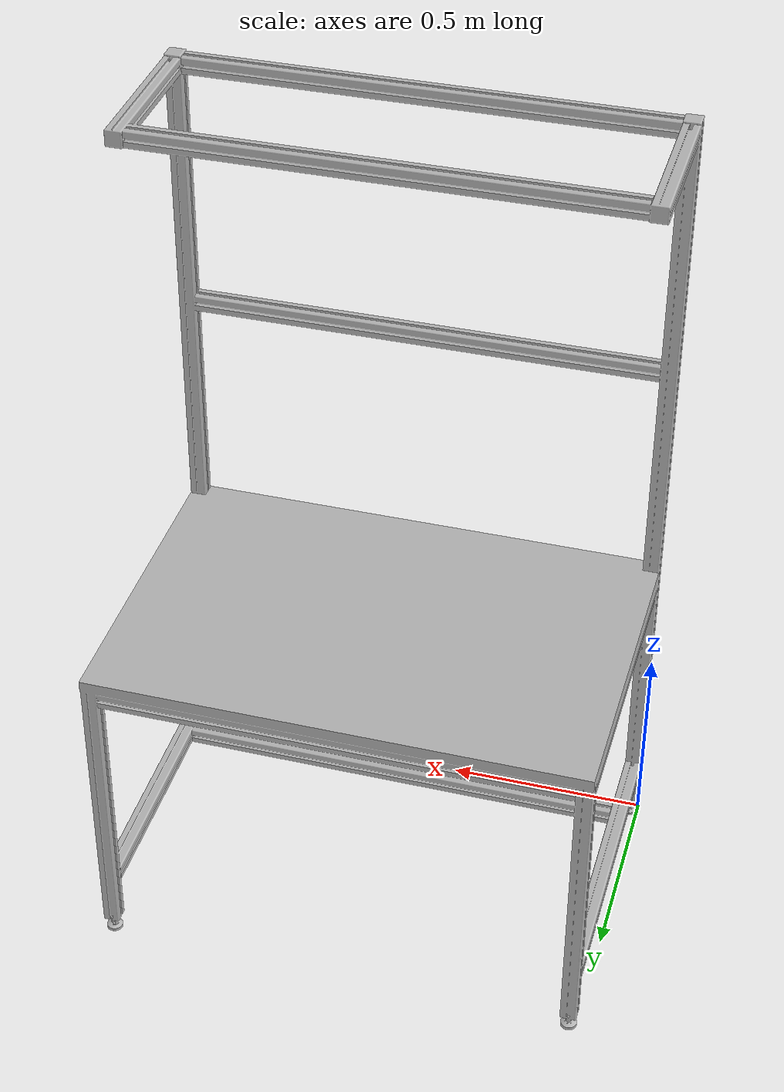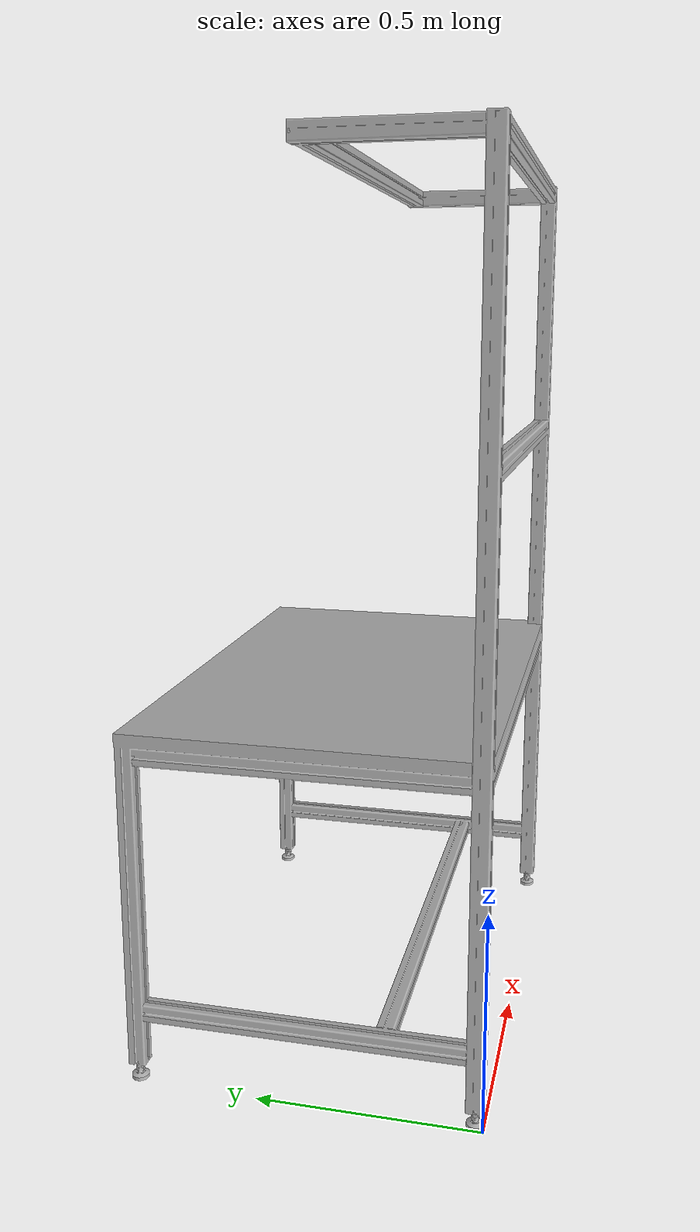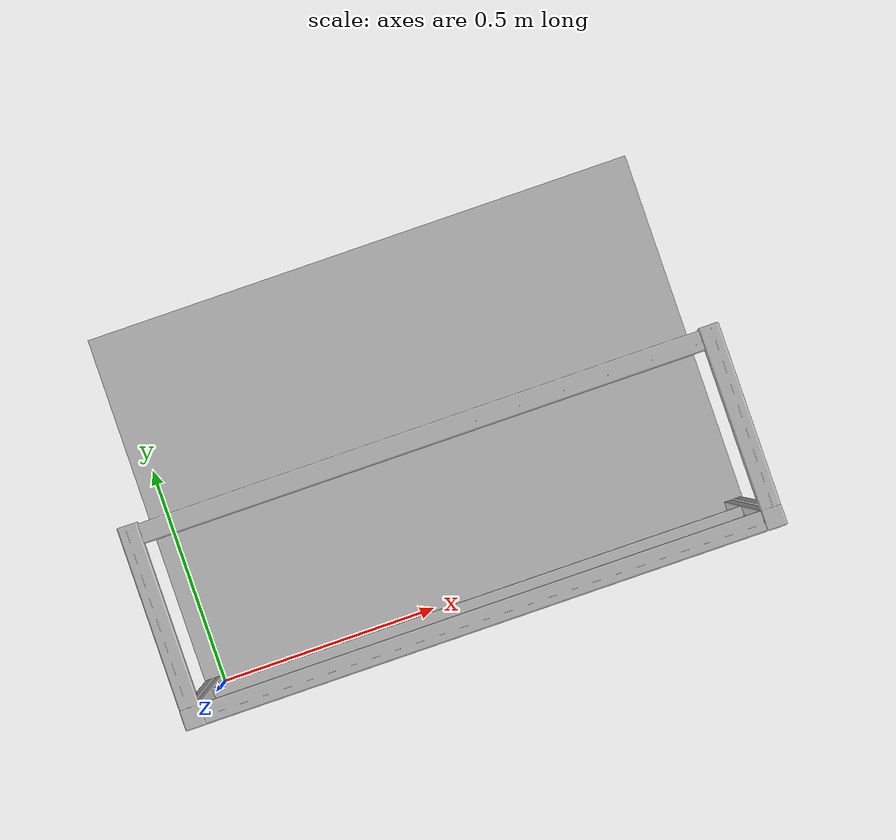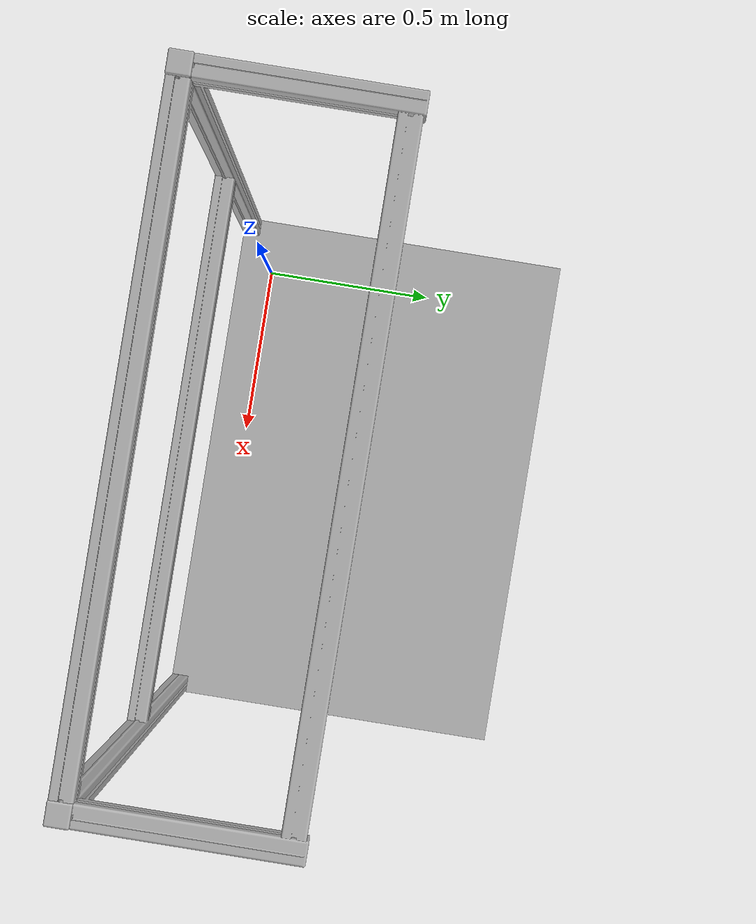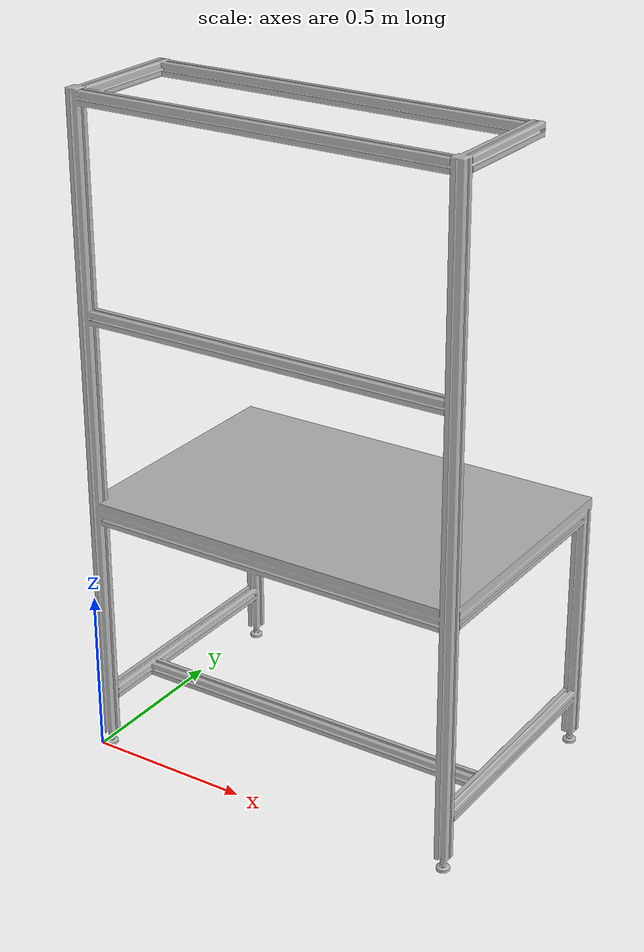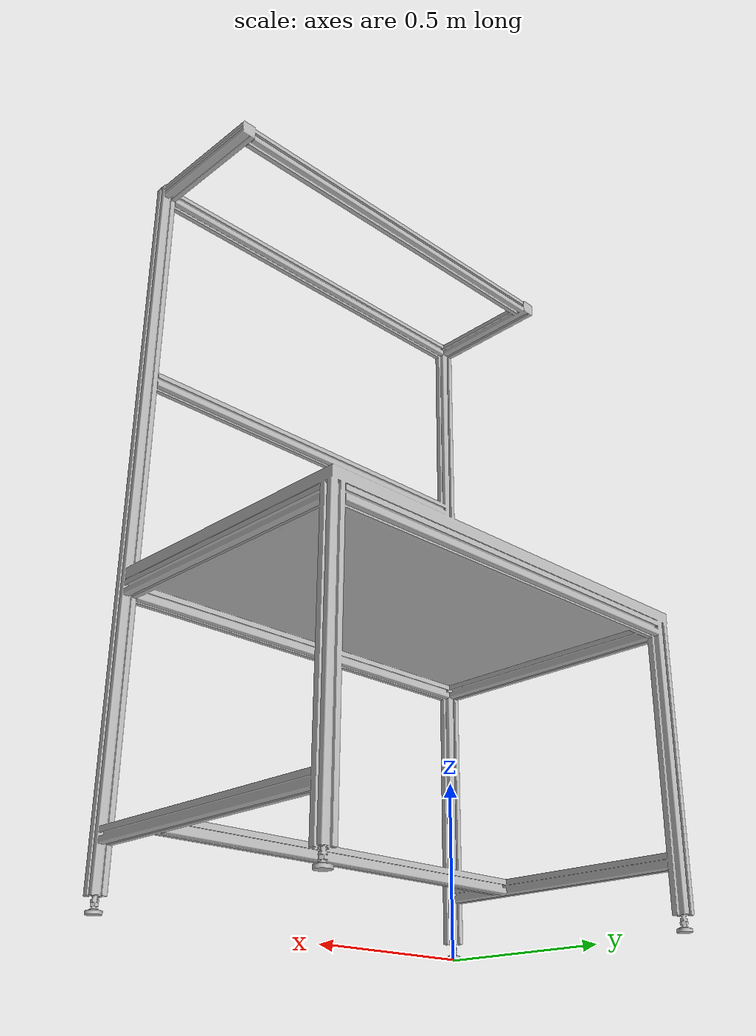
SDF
<?xml version="1.0" ?>
<sdf version="1.5">
  <model name="table">
    <static>false</static>
    <link name="link">
      <collision name="collision">
        <geometry>
          <mesh>
            <scale>1 1 1</scale>
            <uri>model://table/meshes/table.stl</uri>
          </mesh>
        </geometry>
      </collision>
      <visual name="visual">
        <geometry>
          <mesh>
            <scale>1 1 1</scale>
            <uri>model://table/meshes/table.stl</uri>
          </mesh>
        </geometry>
      </visual>
    </link>
  </model>
</sdf>
